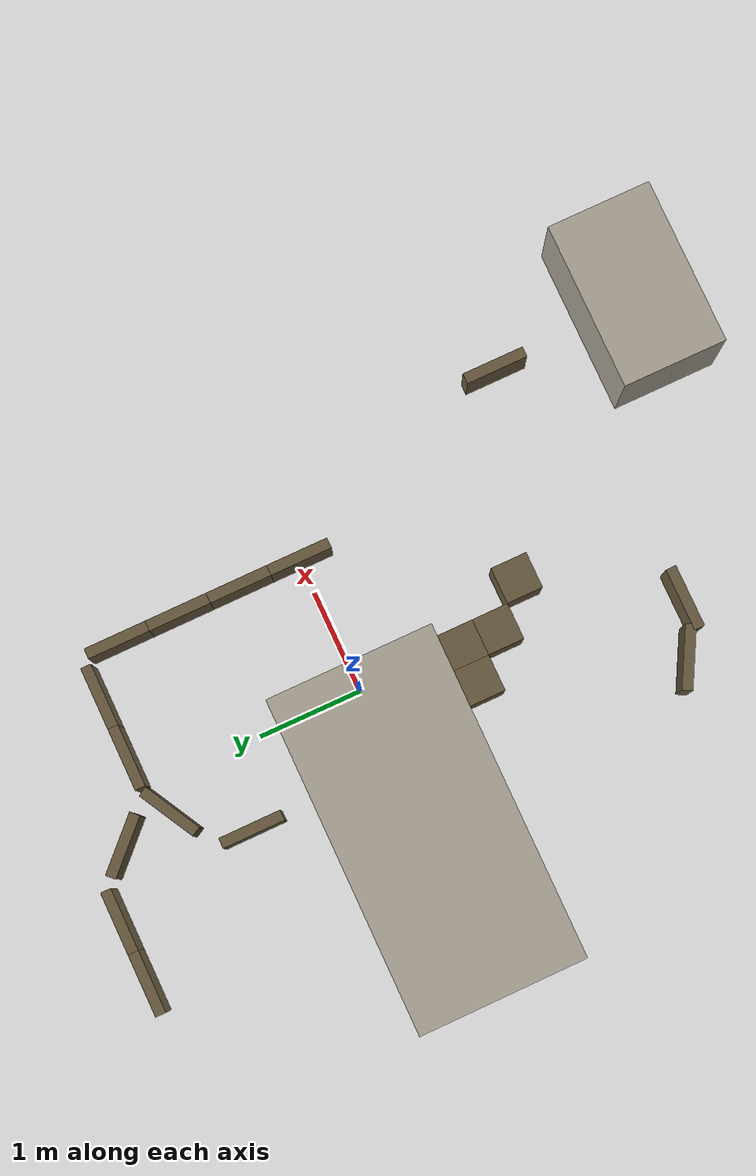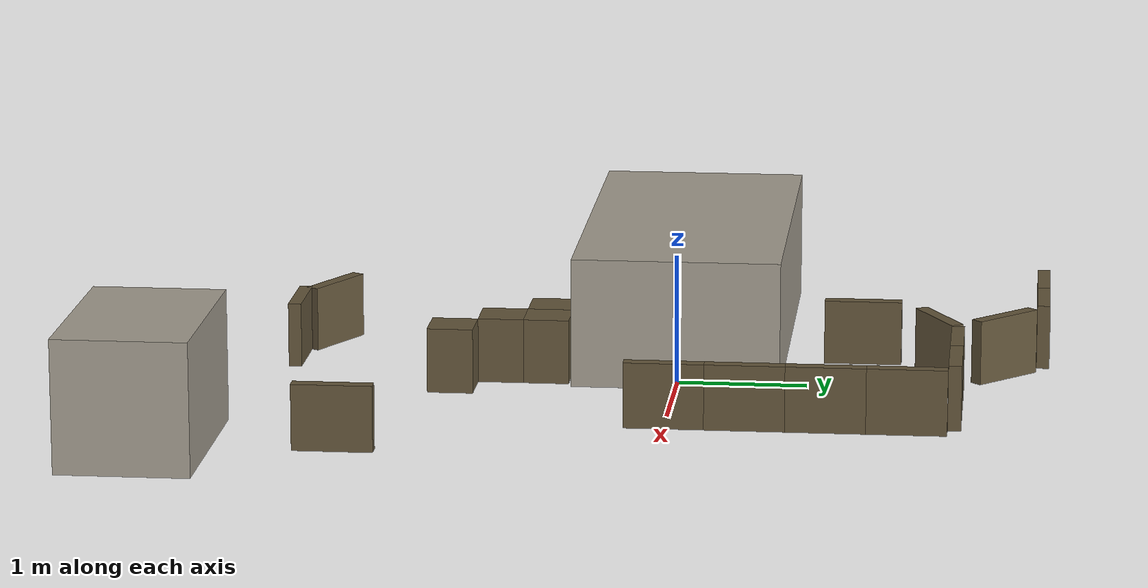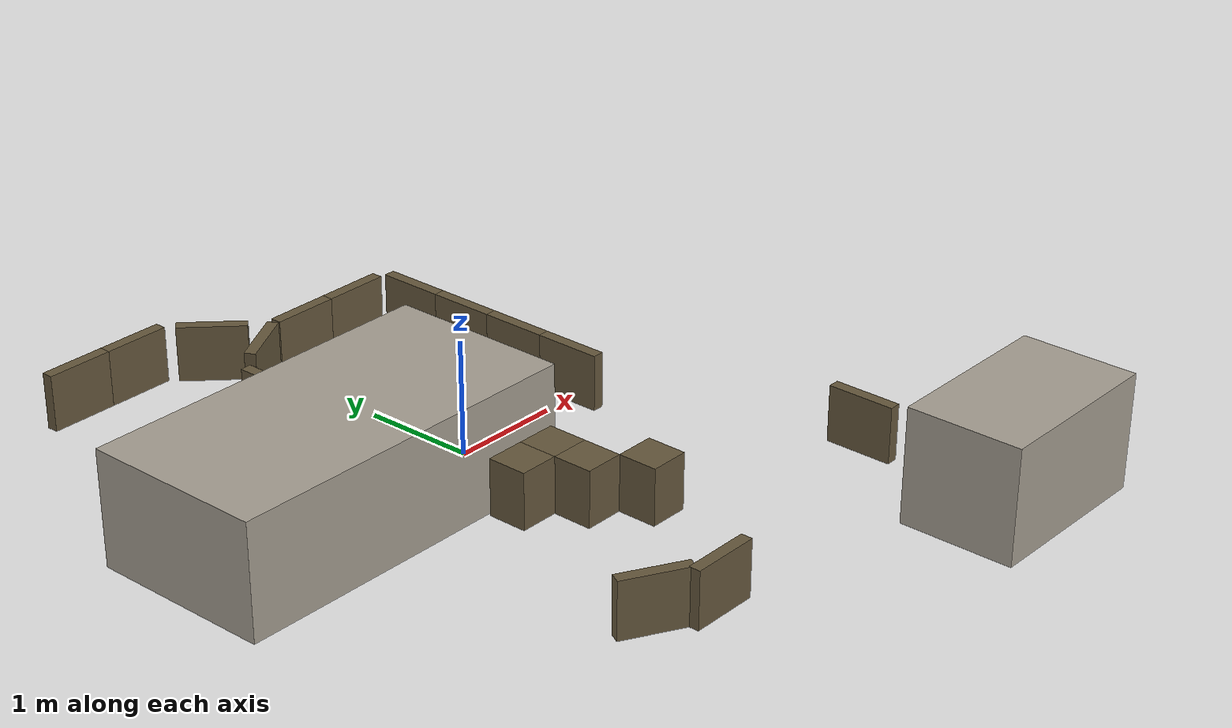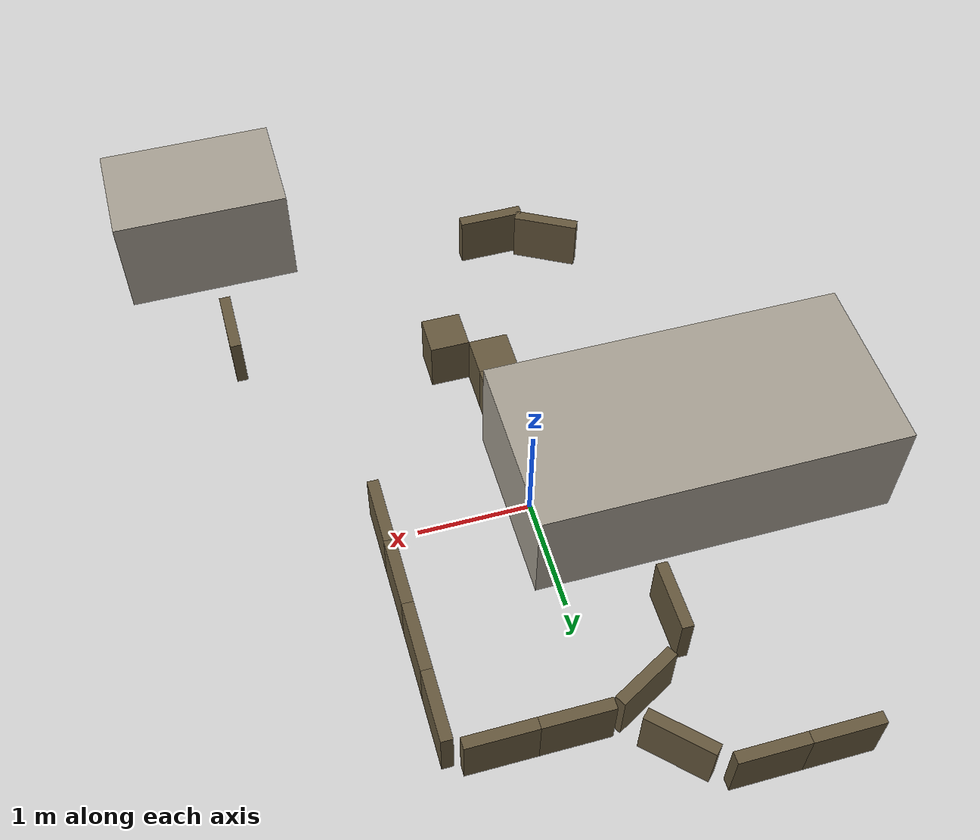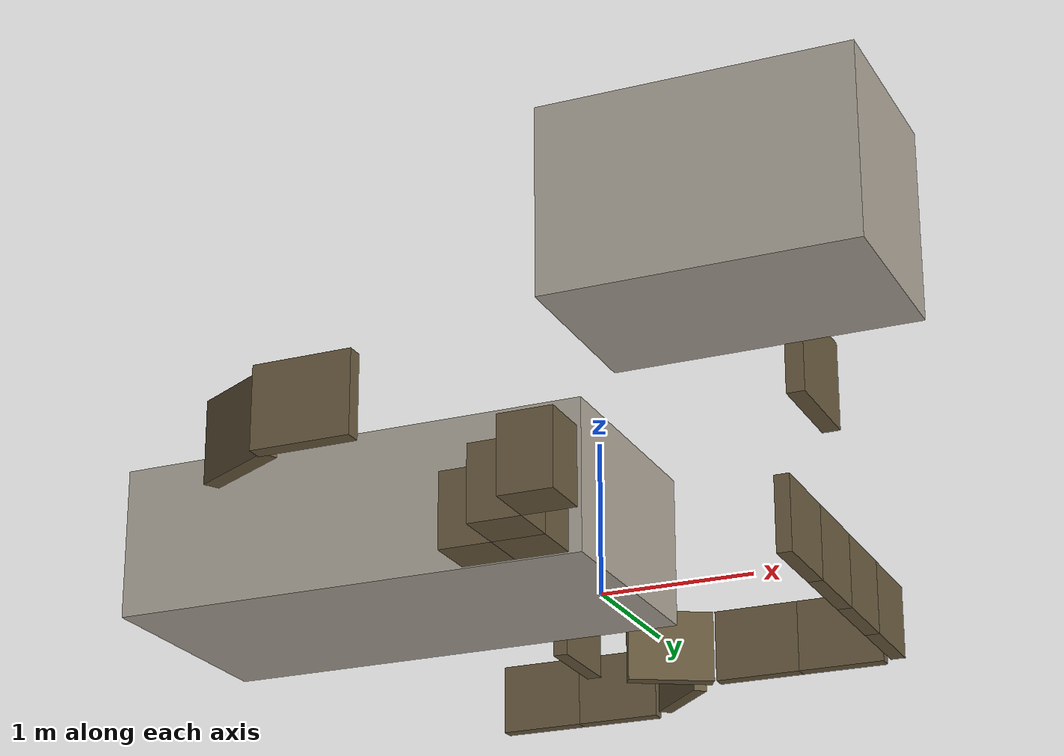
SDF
<?xml version="1.0" ?>
<sdf version="1.7">
    <model name="037_obstacles_1">
        <!-- INCLUDE base Obstacles -->
    <include>
      <uri>package://jackal_helper/worlds/037/037_obstacles_base.sdf</uri>
    </include>
    <!-- Cardbord Box          -->
    <!-- Color: #65573c          -->

    <link name="box_1">
        <pose>-0.40 -1 0.25 0 0 0</pose>

        <collision name="box_1_collision">
            <geometry>
            <box>
                <size>0.35 0.35 0.5 0 0 0</size>
            </box>
            </geometry>
        </collision>

        <visual name="box_1_visual">
            <geometry>
            <box>
                <size> 0.35 0.35 0.5 0 0 0</size>
            </box>
            </geometry>

            <material>
            <ambient>0.396 0.3412 0.2353 1</ambient>
            <diffuse>0.396 0.3412 0.2353 1</diffuse>
            <specular>0.1 0.1 0.1 1</specular>
            </material>
        </visual>
    </link>

    <link name="box_2">
        <pose>-0.05 -1 0.25 0 0 0</pose>

        <collision name="box_2_collision">
            <geometry>
            <box>
                <size>0.35 0.35 0.5 0 0 0</size>
            </box>
            </geometry>
        </collision>

        <visual name="box_2_visual">
            <geometry>
            <box>
                <size> 0.35 0.35 0.5 0 0 0</size>
            </box>
            </geometry>

            <material>
            <ambient>0.396 0.3412 0.2353 1</ambient>
            <diffuse>0.396 0.3412 0.2353 1</diffuse>
            <specular>0.1 0.1 0.1 1</specular>
            </material>
        </visual>
    </link>

    <link name="box_3">
        <pose>-0.05 -1.35 0.25 0 0 0</pose>

        <collision name="box_3_collision">
            <geometry>
            <box>
                <size>0.35 0.35 0.5 0 0 0</size>
            </box>
            </geometry>
        </collision>

        <visual name="box_3_visual">
            <geometry>
            <box>
                <size> 0.35 0.35 0.5 0 0 0</size>
            </box>
            </geometry>

            <material>
            <ambient>0.396 0.3412 0.2353 1</ambient>
            <diffuse>0.396 0.3412 0.2353 1</diffuse>
            <specular>0.1 0.1 0.1 1</specular>
            </material>
        </visual>
    </link>

    <link name="box_4">
        <pose>0.3 -1.7 0.25 0 0 0</pose>

        <collision name="box_4_collision">
            <geometry>
            <box>
                <size>0.35 0.35 0.5 0 0 0</size>
            </box>
            </geometry>
        </collision>

        <visual name="box_4_visual">
            <geometry>
            <box>
                <size> 0.35 0.35 0.5 0 0 0</size>
            </box>
            </geometry>

            <material>
            <ambient>0.396 0.3412 0.2353 1</ambient>
            <diffuse>0.396 0.3412 0.2353 1</diffuse>
            <specular>0.1 0.1 0.1 1</specular>
            </material>
        </visual>
    </link>

    <link name="box_5">
        <pose>1.3 0.0 0.25 0 0 0</pose>

        <collision name="box_5_collision">
            <geometry>
            <box>
                <size>0.1 0.6 0.5 0 0 0</size>
            </box>
            </geometry>
        </collision>

        <visual name="box_5_visual">
            <geometry>
            <box>
                <size> 0.1 0.6 0.5 0 0 0</size>
            </box>
            </geometry>

            <material>
            <ambient>0.396 0.3412 0.2353 1</ambient>
            <diffuse>0.396 0.3412 0.2353 1</diffuse>
            <specular>0.1 0.1 0.1 1</specular>
            </material>
        </visual>
    </link>

    <link name="box_6">
        <pose>1.3 0.6 0.25 0 0 0</pose>

        <collision name="box_6_collision">
            <geometry>
            <box>
                <size>0.1 0.6 0.5 0 0 0</size>
            </box>
            </geometry>
        </collision>

        <visual name="box_6_visual">
            <geometry>
            <box>
                <size> 0.1 0.6 0.5 0 0 0</size>
            </box>
            </geometry>

            <material>
            <ambient>0.396 0.3412 0.2353 1</ambient>
            <diffuse>0.396 0.3412 0.2353 1</diffuse>
            <specular>0.1 0.1 0.1 1</specular>
            </material>
        </visual>
    </link>

    <link name="box_7">
        <pose>1.3 1.2 0.25 0 0 0</pose>

        <collision name="box_7_collision">
            <geometry>
            <box>
                <size>0.1 0.6 0.5 0 0 0</size>
            </box>
            </geometry>
        </collision>

        <visual name="box_7_visual">
            <geometry>
            <box>
                <size> 0.1 0.6 0.5 0 0 0</size>
            </box>
            </geometry>

            <material>
            <ambient>0.396 0.3412 0.2353 1</ambient>
            <diffuse>0.396 0.3412 0.2353 1</diffuse>
            <specular>0.1 0.1 0.1 1</specular>
            </material>
        </visual>
    </link>

    <link name="box_8">
        <pose>1.3 1.8 0.25 0 0 0</pose>

        <collision name="box_8_collision">
            <geometry>
            <box>
                <size>0.1 0.6 0.5 0 0 0</size>
            </box>
            </geometry>
        </collision>

        <visual name="box_8_visual">
            <geometry>
            <box>
                <size> 0.1 0.6 0.5 0 0 0</size>
            </box>
            </geometry>

            <material>
            <ambient>0.396 0.3412 0.2353 1</ambient>
            <diffuse>0.396 0.3412 0.2353 1</diffuse>
            <specular>0.1 0.1 0.1 1</specular>
            </material>
        </visual>
    </link>

    <link name="box_9">
        <pose> 0.9 2.15 0.25 0 0 0</pose>

        <collision name="box_9_collision">
            <geometry>
            <box>
                <size>0.6 0.1 0.5 0 0 0</size>
            </box>
            </geometry>
        </collision>

        <visual name="box_9_visual">
            <geometry>
            <box>
                <size> 0.6 0.1 0.5 0 0 0</size>
            </box>
            </geometry>

            <material>
            <ambient>0.396 0.3412 0.2353 1</ambient>
            <diffuse>0.396 0.3412 0.2353 1</diffuse>
            <specular>0.1 0.1 0.1 1</specular>
            </material>
        </visual>
    </link>

    <link name="box_10">
        <pose> 0.3 2.15 0.25 0 0 0</pose>

        <collision name="box_10_collision">
            <geometry>
            <box>
                <size>0.6 0.1 0.5 0 0 0</size>
            </box>
            </geometry>
        </collision>

        <visual name="box_10_visual">
            <geometry>
            <box>
                <size> 0.6 0.1 0.5 0 0 0</size>
            </box>
            </geometry>

            <material>
            <ambient>0.396 0.3412 0.2353 1</ambient>
            <diffuse>0.396 0.3412 0.2353 1</diffuse>
            <specular>0.1 0.1 0.1 1</specular>
            </material>
        </visual>
    </link>

    <link name="box_11">
        <pose> -0.3 2.0 0.25 0 0 0.5</pose>

        <collision name="box_10_collision">
            <geometry>
            <box>
                <size>0.6 0.1 0.5 0 0 0</size>
            </box>
            </geometry>
        </collision>

        <visual name="box_10_visual">
            <geometry>
            <box>
                <size> 0.6 0.1 0.5 0 0 0</size>
            </box>
            </geometry>

            <material>
            <ambient>0.396 0.3412 0.2353 1</ambient>
            <diffuse>0.396 0.3412 0.2353 1</diffuse>
            <specular>0.1 0.1 0.1 1</specular>
            </material>
        </visual>
    </link>

    <link name="box_12">
        <pose> -0.75 1.4 0.25 0 0 0.0</pose>

        <collision name="box_12_collision">
            <geometry>
            <box>
                <size>0.1 0.6 0.5 0 0 0</size>
            </box>
            </geometry>
        </collision>

        <visual name="box_12_visual">
            <geometry>
            <box>
                <size> 0.1 0.6 0.5 0 0 0</size>
            </box>
            </geometry>

            <material>
            <ambient>0.396 0.3412 0.2353 1</ambient>
            <diffuse>0.396 0.3412 0.2353 1</diffuse>
            <specular>0.1 0.1 0.1 1</specular>
            </material>
        </visual>
    </link>

    <link name="box_13">
        <pose>2.15 -2.35 0.25 0 0 0</pose>

        <collision name="box_13_collision">
            <geometry>
            <box>
                <size>0.1 0.6 0.5 0 0 0</size>
            </box>
            </geometry>
        </collision>

        <visual name="box_13_visual">
            <geometry>
            <box>
                <size> 0.1 0.6 0.5 0 0 0</size>
            </box>
            </geometry>

            <material>
            <ambient>0.396 0.3412 0.2353 1</ambient>
            <diffuse>0.396 0.3412 0.2353 1</diffuse>
            <specular>0.1 0.1 0.1 1</specular>
            </material>
        </visual>
    </link>

    <link name="box_14">
        <pose>-0.50 -3.00 0.25 0 0 0</pose>

        <collision name="box_14_collision">
            <geometry>
            <box>
                <size>0.6 0.1 0.5 0 0 0</size>
            </box>
            </geometry>
        </collision>

        <visual name="box_14_visual">
            <geometry>
            <box>
                <size> 0.6 0.1 0.5 0 0 0</size>
            </box>
            </geometry>

            <material>
            <ambient>0.396 0.3412 0.2353 1</ambient>
            <diffuse>0.396 0.3412 0.2353 1</diffuse>
            <specular>0.1 0.1 0.1 1</specular>
            </material>
        </visual>
    </link>

    <link name="box_15">
        <pose>-1.00 -2.80 0.25 0 0 -0.5</pose>

        <collision name="box_15_collision">
            <geometry>
            <box>
                <size>0.6 0.1 0.5 0 0 0</size>
            </box>
            </geometry>
        </collision>

        <visual name="box_15_visual">
            <geometry>
            <box>
                <size> 0.6 0.1 0.5 0 0 0</size>
            </box>
            </geometry>

            <material>
            <ambient>0.396 0.3412 0.2353 1</ambient>
            <diffuse>0.396 0.3412 0.2353 1</diffuse>
            <specular>0.1 0.1 0.1 1</specular>
            </material>
        </visual>
    </link>

    <link name="box_16">
        <pose>-0.4 2.5 0.25 0 0 -0.785</pose>

        <collision name="box_16_collision">
            <geometry>
            <box>
                <size>0.6 0.1 0.5 0 0 0</size>
            </box>
            </geometry>
        </collision>

        <visual name="box_16_visual">
            <geometry>
            <box>
                <size> 0.6 0.1 0.5 0 0 0</size>
            </box>
            </geometry>

            <material>
            <ambient>0.396 0.3412 0.2353 1</ambient>
            <diffuse>0.396 0.3412 0.2353 1</diffuse>
            <specular>0.1 0.1 0.1 1</specular>
            </material>
        </visual>
    </link>

    <link name="box_17">
        <pose>-1.0 2.8 0.25 0 0 0.0</pose>

        <collision name="box_17_collision">
            <geometry>
            <box>
                <size>0.6 0.1 0.5 0 0 0</size>
            </box>
            </geometry>
        </collision>

        <visual name="box_17_visual">
            <geometry>
            <box>
                <size> 0.6 0.1 0.5 0 0 0</size>
            </box>
            </geometry>

            <material>
            <ambient>0.396 0.3412 0.2353 1</ambient>
            <diffuse>0.396 0.3412 0.2353 1</diffuse>
            <specular>0.1 0.1 0.1 1</specular>
            </material>
        </visual>
    </link>

    <link name="box_18">
        <pose>-1.6 2.8 0.25 0 0 0.0</pose>

        <collision name="box_18_collision">
            <geometry>
            <box>
                <size>0.6 0.1 0.5 0 0 0</size>
            </box>
            </geometry>
        </collision>

        <visual name="box_18_visual">
            <geometry>
            <box>
                <size> 0.6 0.1 0.5 0 0 0</size>
            </box>
            </geometry>

            <material>
            <ambient>0.396 0.3412 0.2353 1</ambient>
            <diffuse>0.396 0.3412 0.2353 1</diffuse>
            <specular>0.1 0.1 0.1 1</specular>
            </material>
        </visual>
    </link>

    </model>
</sdf>

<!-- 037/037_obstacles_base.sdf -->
<sdf version="1.7">
    <model name="037_obstacles_base">

        <!-- Big table clump at the right wall          -->
        <!-- Color: #A69F92FF          -->
        <link name="table_clump_left">
        <pose>-1.40 0 0.5 0 0 0</pose>

        <collision name="table_clump_left_collision">
            <geometry>
            <box>
                <size>3.2 1.6 1.0 0 0 0</size>
            </box>
            </geometry>
        </collision>

        <visual name="table_clump_left_visual">
            <geometry>
            <box>
                <size>3.2 1.6 1.0 0 0 0</size>
            </box>
            </geometry>

            <material>
            <ambient>0.6510 0.6235 0.5725 1</ambient>
            <diffuse>0.6510 0.6235 0.5725 1</diffuse>
            <specular>0.1 0.1 0.1 1</specular>
            </material>
        </visual>
        </link>

        <link name="table_clump_right_bottom">
        <pose>2.2 -3.75 0.5 0 0 0</pose>

        <collision name="table_clump_right_bottom_collision">
            <geometry>
            <box>
                <size>1.6 1.0 1.0 0 0 0</size>
            </box>
            </geometry>
        </collision>

        <!-- Small table clump at the bottom left corner          -->
        <!-- Color: #A69F92FF          -->

        <visual name="table_clump_right_bottom_visual">
            <geometry>
            <box>
                <size>1.6 1.0 1.0 0 0 0</size>
            </box>
            </geometry>

            <material>
            <ambient>0.6510 0.6235 0.5725 1</ambient>
            <diffuse>0.6510 0.6235 0.5725 1</diffuse>
            <specular>0.1 0.1 0.1 1</specular>
            </material>
        </visual>
        </link>

    </model>
</sdf>
